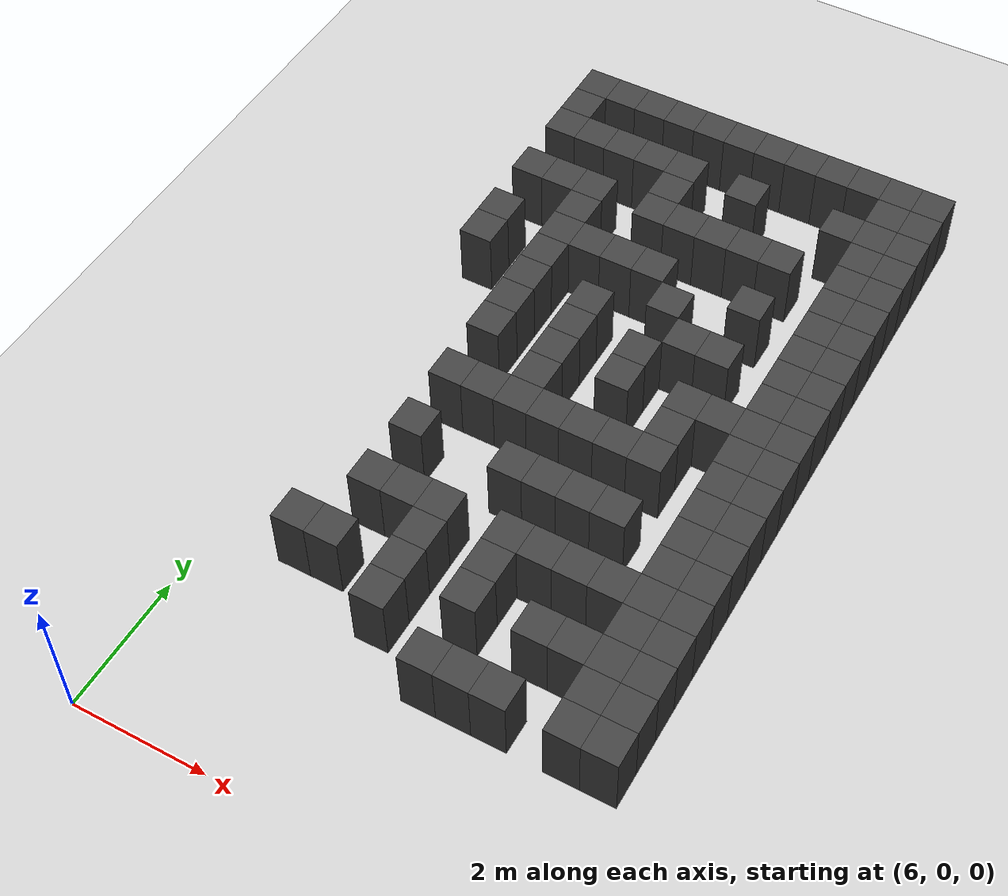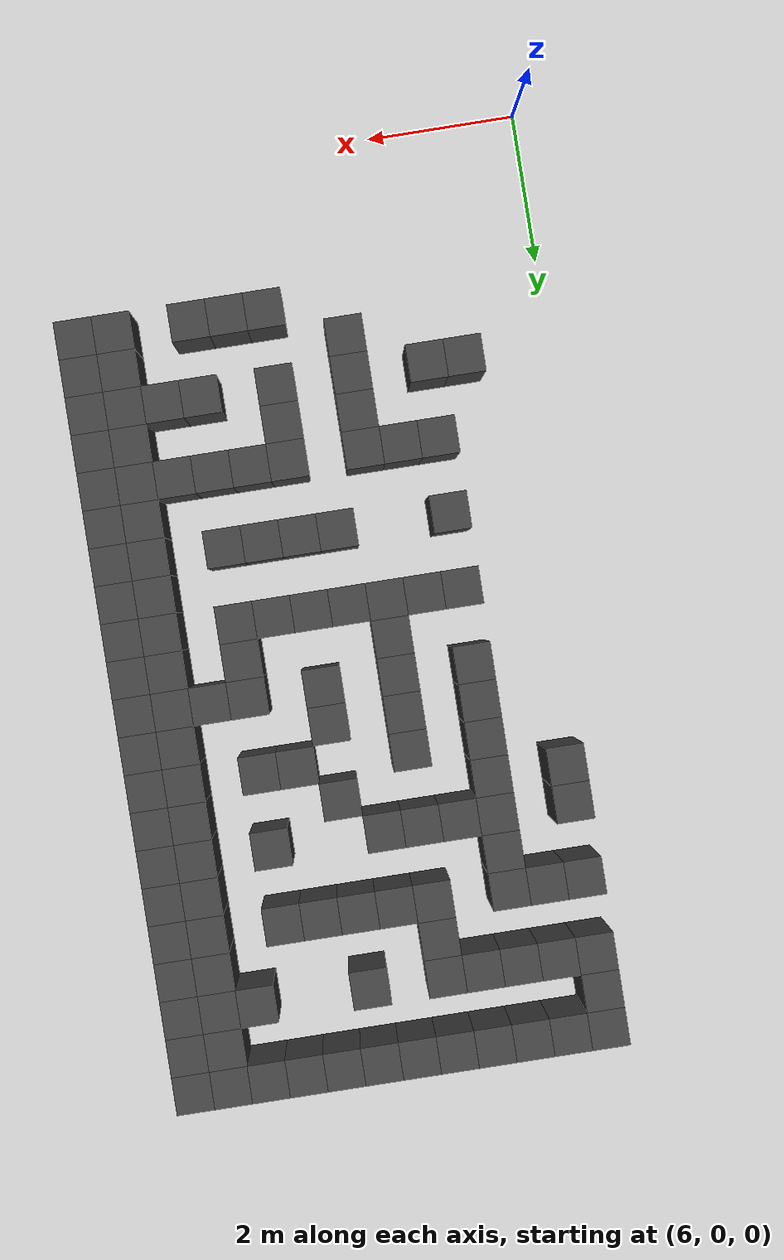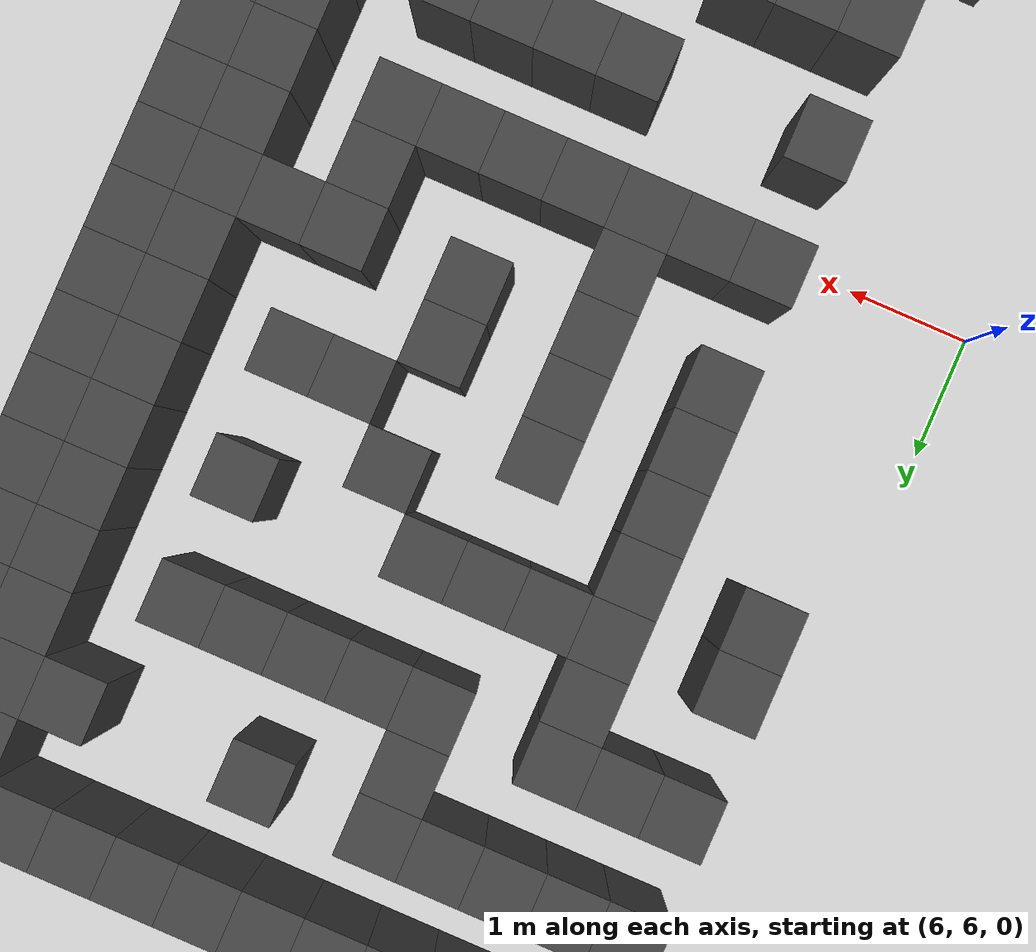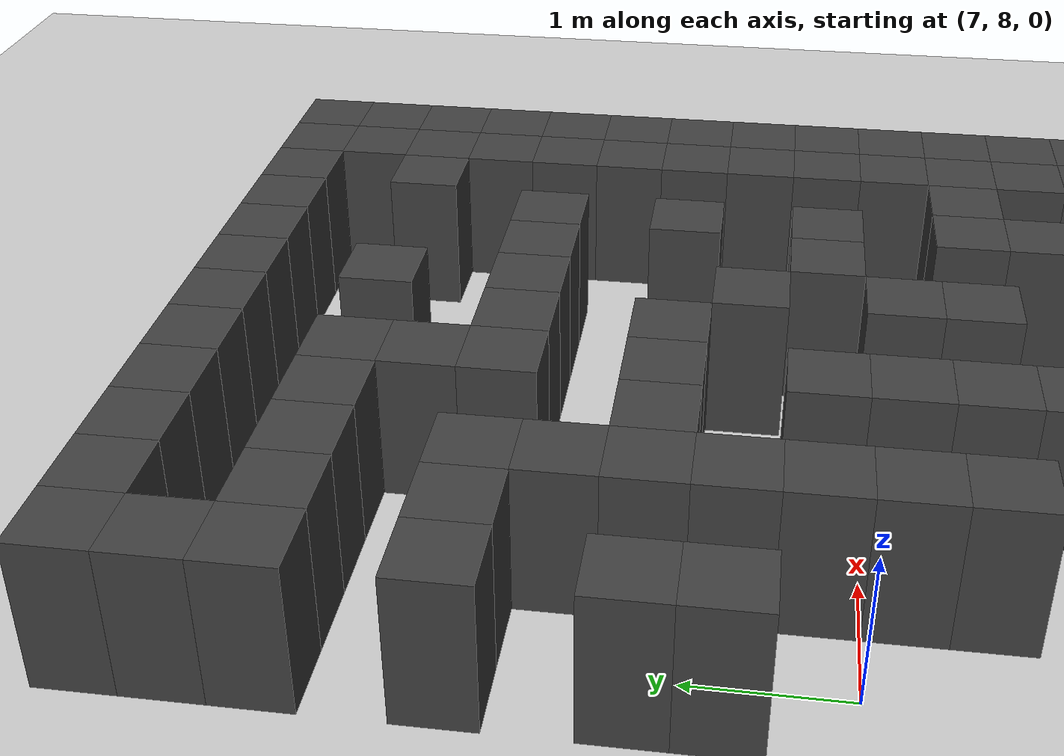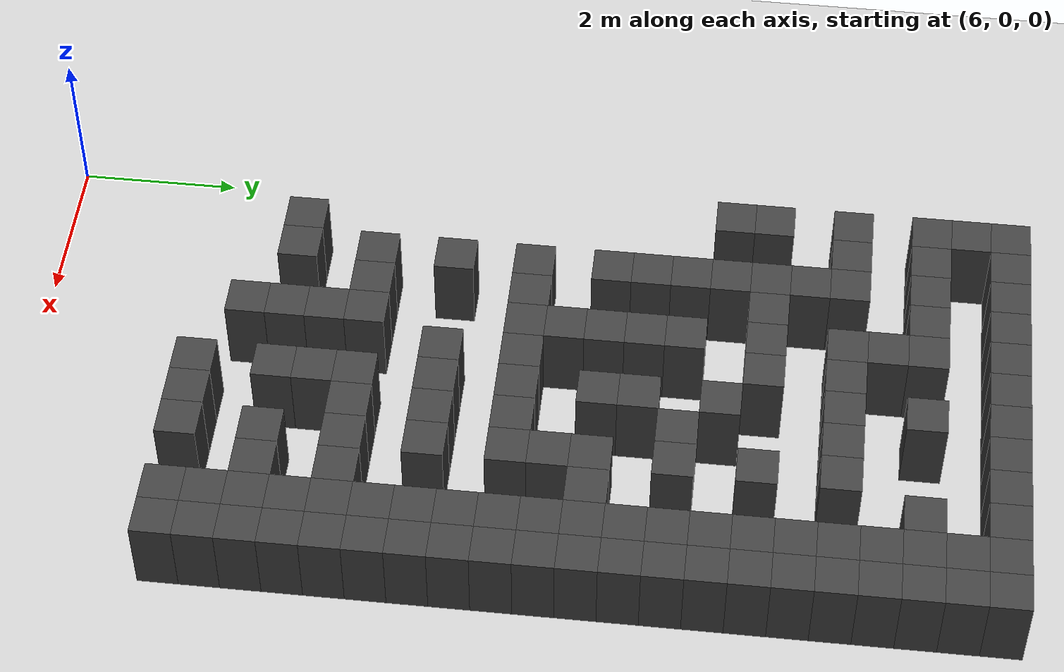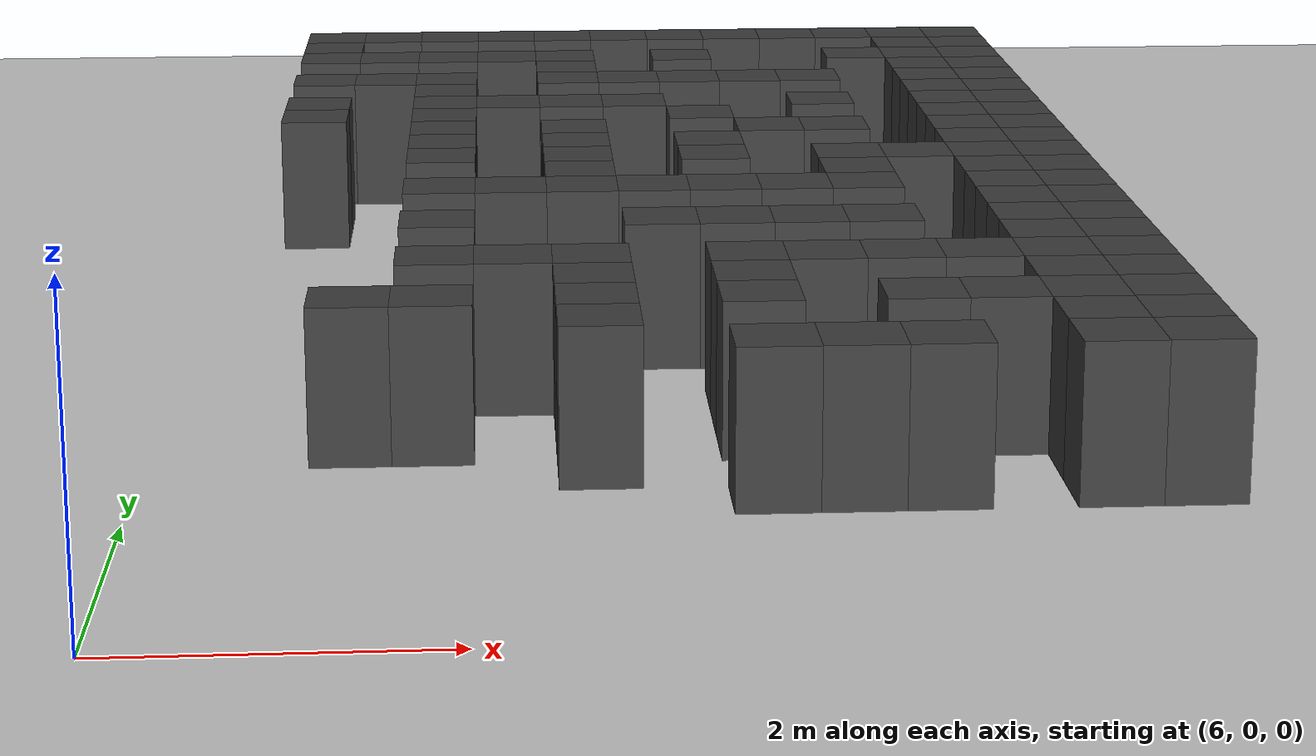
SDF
<sdf version="1.7">
 <world name="map_16588">
  <model name="ground_plane">
   <static>true</static>
   <link name="link">
    <collision name="collision">
     <geometry><plane><normal>0 0 1</normal><size>200 200</size></plane></geometry>
    </collision>
    <visual name="visual">
     <geometry><plane><normal>0 0 1</normal><size>200 200</size></plane></geometry>
     <material><ambient>0.8 0.8 0.8 1</ambient><diffuse>0.8 0.8 0.8 1</diffuse></material>
    </visual>
   </link>
  </model>
  <model name="maze_environment">
   <static>true</static>
   <link name="wall_38">
    <pose>6.750 12.250 0.500 0 0 0</pose>
    <collision name="col"><geometry><box><size>0.5 0.5 1.0</size></box></geometry></collision>
    <visual name="vis">
     <geometry><box><size>0.5 0.5 1.0</size></box></geometry>
     <material><ambient>0.15 0.15 0.15 1</ambient><diffuse>0.25 0.25 0.25 1</diffuse></material>
    </visual>
   </link>
   <link name="wall_39">
    <pose>7.250 12.250 0.500 0 0 0</pose>
    <collision name="col"><geometry><box><size>0.5 0.5 1.0</size></box></geometry></collision>
    <visual name="vis">
     <geometry><box><size>0.5 0.5 1.0</size></box></geometry>
     <material><ambient>0.15 0.15 0.15 1</ambient><diffuse>0.25 0.25 0.25 1</diffuse></material>
    </visual>
   </link>
   <link name="wall_40">
    <pose>7.750 12.250 0.500 0 0 0</pose>
    <collision name="col"><geometry><box><size>0.5 0.5 1.0</size></box></geometry></collision>
    <visual name="vis">
     <geometry><box><size>0.5 0.5 1.0</size></box></geometry>
     <material><ambient>0.15 0.15 0.15 1</ambient><diffuse>0.25 0.25 0.25 1</diffuse></material>
    </visual>
   </link>
   <link name="wall_41">
    <pose>8.250 12.250 0.500 0 0 0</pose>
    <collision name="col"><geometry><box><size>0.5 0.5 1.0</size></box></geometry></collision>
    <visual name="vis">
     <geometry><box><size>0.5 0.5 1.0</size></box></geometry>
     <material><ambient>0.15 0.15 0.15 1</ambient><diffuse>0.25 0.25 0.25 1</diffuse></material>
    </visual>
   </link>
   <link name="wall_42">
    <pose>8.750 12.250 0.500 0 0 0</pose>
    <collision name="col"><geometry><box><size>0.5 0.5 1.0</size></box></geometry></collision>
    <visual name="vis">
     <geometry><box><size>0.5 0.5 1.0</size></box></geometry>
     <material><ambient>0.15 0.15 0.15 1</ambient><diffuse>0.25 0.25 0.25 1</diffuse></material>
    </visual>
   </link>
   <link name="wall_43">
    <pose>9.250 12.250 0.500 0 0 0</pose>
    <collision name="col"><geometry><box><size>0.5 0.5 1.0</size></box></geometry></collision>
    <visual name="vis">
     <geometry><box><size>0.5 0.5 1.0</size></box></geometry>
     <material><ambient>0.15 0.15 0.15 1</ambient><diffuse>0.25 0.25 0.25 1</diffuse></material>
    </visual>
   </link>
   <link name="wall_44">
    <pose>9.750 12.250 0.500 0 0 0</pose>
    <collision name="col"><geometry><box><size>0.5 0.5 1.0</size></box></geometry></collision>
    <visual name="vis">
     <geometry><box><size>0.5 0.5 1.0</size></box></geometry>
     <material><ambient>0.15 0.15 0.15 1</ambient><diffuse>0.25 0.25 0.25 1</diffuse></material>
    </visual>
   </link>
   <link name="wall_45">
    <pose>10.250 12.250 0.500 0 0 0</pose>
    <collision name="col"><geometry><box><size>0.5 0.5 1.0</size></box></geometry></collision>
    <visual name="vis">
     <geometry><box><size>0.5 0.5 1.0</size></box></geometry>
     <material><ambient>0.15 0.15 0.15 1</ambient><diffuse>0.25 0.25 0.25 1</diffuse></material>
    </visual>
   </link>
   <link name="wall_46">
    <pose>10.750 12.250 0.500 0 0 0</pose>
    <collision name="col"><geometry><box><size>0.5 0.5 1.0</size></box></geometry></collision>
    <visual name="vis">
     <geometry><box><size>0.5 0.5 1.0</size></box></geometry>
     <material><ambient>0.15 0.15 0.15 1</ambient><diffuse>0.25 0.25 0.25 1</diffuse></material>
    </visual>
   </link>
   <link name="wall_47">
    <pose>11.250 12.250 0.500 0 0 0</pose>
    <collision name="col"><geometry><box><size>0.5 0.5 1.0</size></box></geometry></collision>
    <visual name="vis">
     <geometry><box><size>0.5 0.5 1.0</size></box></geometry>
     <material><ambient>0.15 0.15 0.15 1</ambient><diffuse>0.25 0.25 0.25 1</diffuse></material>
    </visual>
   </link>
   <link name="wall_48">
    <pose>11.750 12.250 0.500 0 0 0</pose>
    <collision name="col"><geometry><box><size>0.5 0.5 1.0</size></box></geometry></collision>
    <visual name="vis">
     <geometry><box><size>0.5 0.5 1.0</size></box></geometry>
     <material><ambient>0.15 0.15 0.15 1</ambient><diffuse>0.25 0.25 0.25 1</diffuse></material>
    </visual>
   </link>
   <link name="wall_49">
    <pose>12.250 12.250 0.500 0 0 0</pose>
    <collision name="col"><geometry><box><size>0.5 0.5 1.0</size></box></geometry></collision>
    <visual name="vis">
     <geometry><box><size>0.5 0.5 1.0</size></box></geometry>
     <material><ambient>0.15 0.15 0.15 1</ambient><diffuse>0.25 0.25 0.25 1</diffuse></material>
    </visual>
   </link>
   <link name="wall_56">
    <pose>6.750 11.750 0.500 0 0 0</pose>
    <collision name="col"><geometry><box><size>0.5 0.5 1.0</size></box></geometry></collision>
    <visual name="vis">
     <geometry><box><size>0.5 0.5 1.0</size></box></geometry>
     <material><ambient>0.15 0.15 0.15 1</ambient><diffuse>0.25 0.25 0.25 1</diffuse></material>
    </visual>
   </link>
   <link name="wall_57">
    <pose>11.750 11.750 0.500 0 0 0</pose>
    <collision name="col"><geometry><box><size>0.5 0.5 1.0</size></box></geometry></collision>
    <visual name="vis">
     <geometry><box><size>0.5 0.5 1.0</size></box></geometry>
     <material><ambient>0.15 0.15 0.15 1</ambient><diffuse>0.25 0.25 0.25 1</diffuse></material>
    </visual>
   </link>
   <link name="wall_58">
    <pose>12.250 11.750 0.500 0 0 0</pose>
    <collision name="col"><geometry><box><size>0.5 0.5 1.0</size></box></geometry></collision>
    <visual name="vis">
     <geometry><box><size>0.5 0.5 1.0</size></box></geometry>
     <material><ambient>0.15 0.15 0.15 1</ambient><diffuse>0.25 0.25 0.25 1</diffuse></material>
    </visual>
   </link>
   <link name="wall_84">
    <pose>6.750 11.250 0.500 0 0 0</pose>
    <collision name="col"><geometry><box><size>0.5 0.5 1.0</size></box></geometry></collision>
    <visual name="vis">
     <geometry><box><size>0.5 0.5 1.0</size></box></geometry>
     <material><ambient>0.15 0.15 0.15 1</ambient><diffuse>0.25 0.25 0.25 1</diffuse></material>
    </visual>
   </link>
   <link name="wall_85">
    <pose>7.250 11.250 0.500 0 0 0</pose>
    <collision name="col"><geometry><box><size>0.5 0.5 1.0</size></box></geometry></collision>
    <visual name="vis">
     <geometry><box><size>0.5 0.5 1.0</size></box></geometry>
     <material><ambient>0.15 0.15 0.15 1</ambient><diffuse>0.25 0.25 0.25 1</diffuse></material>
    </visual>
   </link>
   <link name="wall_86">
    <pose>7.750 11.250 0.500 0 0 0</pose>
    <collision name="col"><geometry><box><size>0.5 0.5 1.0</size></box></geometry></collision>
    <visual name="vis">
     <geometry><box><size>0.5 0.5 1.0</size></box></geometry>
     <material><ambient>0.15 0.15 0.15 1</ambient><diffuse>0.25 0.25 0.25 1</diffuse></material>
    </visual>
   </link>
   <link name="wall_87">
    <pose>8.250 11.250 0.500 0 0 0</pose>
    <collision name="col"><geometry><box><size>0.5 0.5 1.0</size></box></geometry></collision>
    <visual name="vis">
     <geometry><box><size>0.5 0.5 1.0</size></box></geometry>
     <material><ambient>0.15 0.15 0.15 1</ambient><diffuse>0.25 0.25 0.25 1</diffuse></material>
    </visual>
   </link>
   <link name="wall_88">
    <pose>8.750 11.250 0.500 0 0 0</pose>
    <collision name="col"><geometry><box><size>0.5 0.5 1.0</size></box></geometry></collision>
    <visual name="vis">
     <geometry><box><size>0.5 0.5 1.0</size></box></geometry>
     <material><ambient>0.15 0.15 0.15 1</ambient><diffuse>0.25 0.25 0.25 1</diffuse></material>
    </visual>
   </link>
   <link name="wall_89">
    <pose>9.750 11.250 0.500 0 0 0</pose>
    <collision name="col"><geometry><box><size>0.5 0.5 1.0</size></box></geometry></collision>
    <visual name="vis">
     <geometry><box><size>0.5 0.5 1.0</size></box></geometry>
     <material><ambient>0.15 0.15 0.15 1</ambient><diffuse>0.25 0.25 0.25 1</diffuse></material>
    </visual>
   </link>
   <link name="wall_90">
    <pose>11.250 11.250 0.500 0 0 0</pose>
    <collision name="col"><geometry><box><size>0.5 0.5 1.0</size></box></geometry></collision>
    <visual name="vis">
     <geometry><box><size>0.5 0.5 1.0</size></box></geometry>
     <material><ambient>0.15 0.15 0.15 1</ambient><diffuse>0.25 0.25 0.25 1</diffuse></material>
    </visual>
   </link>
   <link name="wall_91">
    <pose>11.750 11.250 0.500 0 0 0</pose>
    <collision name="col"><geometry><box><size>0.5 0.5 1.0</size></box></geometry></collision>
    <visual name="vis">
     <geometry><box><size>0.5 0.5 1.0</size></box></geometry>
     <material><ambient>0.15 0.15 0.15 1</ambient><diffuse>0.25 0.25 0.25 1</diffuse></material>
    </visual>
   </link>
   <link name="wall_92">
    <pose>12.250 11.250 0.500 0 0 0</pose>
    <collision name="col"><geometry><box><size>0.5 0.5 1.0</size></box></geometry></collision>
    <visual name="vis">
     <geometry><box><size>0.5 0.5 1.0</size></box></geometry>
     <material><ambient>0.15 0.15 0.15 1</ambient><diffuse>0.25 0.25 0.25 1</diffuse></material>
    </visual>
   </link>
   <link name="wall_105">
    <pose>8.750 10.750 0.500 0 0 0</pose>
    <collision name="col"><geometry><box><size>0.5 0.5 1.0</size></box></geometry></collision>
    <visual name="vis">
     <geometry><box><size>0.5 0.5 1.0</size></box></geometry>
     <material><ambient>0.15 0.15 0.15 1</ambient><diffuse>0.25 0.25 0.25 1</diffuse></material>
    </visual>
   </link>
   <link name="wall_106">
    <pose>11.750 10.750 0.500 0 0 0</pose>
    <collision name="col"><geometry><box><size>0.5 0.5 1.0</size></box></geometry></collision>
    <visual name="vis">
     <geometry><box><size>0.5 0.5 1.0</size></box></geometry>
     <material><ambient>0.15 0.15 0.15 1</ambient><diffuse>0.25 0.25 0.25 1</diffuse></material>
    </visual>
   </link>
   <link name="wall_107">
    <pose>12.250 10.750 0.500 0 0 0</pose>
    <collision name="col"><geometry><box><size>0.5 0.5 1.0</size></box></geometry></collision>
    <visual name="vis">
     <geometry><box><size>0.5 0.5 1.0</size></box></geometry>
     <material><ambient>0.15 0.15 0.15 1</ambient><diffuse>0.25 0.25 0.25 1</diffuse></material>
    </visual>
   </link>
   <link name="wall_131">
    <pose>6.750 10.250 0.500 0 0 0</pose>
    <collision name="col"><geometry><box><size>0.5 0.5 1.0</size></box></geometry></collision>
    <visual name="vis">
     <geometry><box><size>0.5 0.5 1.0</size></box></geometry>
     <material><ambient>0.15 0.15 0.15 1</ambient><diffuse>0.25 0.25 0.25 1</diffuse></material>
    </visual>
   </link>
   <link name="wall_132">
    <pose>7.250 10.250 0.500 0 0 0</pose>
    <collision name="col"><geometry><box><size>0.5 0.5 1.0</size></box></geometry></collision>
    <visual name="vis">
     <geometry><box><size>0.5 0.5 1.0</size></box></geometry>
     <material><ambient>0.15 0.15 0.15 1</ambient><diffuse>0.25 0.25 0.25 1</diffuse></material>
    </visual>
   </link>
   <link name="wall_133">
    <pose>7.750 10.250 0.500 0 0 0</pose>
    <collision name="col"><geometry><box><size>0.5 0.5 1.0</size></box></geometry></collision>
    <visual name="vis">
     <geometry><box><size>0.5 0.5 1.0</size></box></geometry>
     <material><ambient>0.15 0.15 0.15 1</ambient><diffuse>0.25 0.25 0.25 1</diffuse></material>
    </visual>
   </link>
   <link name="wall_134">
    <pose>8.750 10.250 0.500 0 0 0</pose>
    <collision name="col"><geometry><box><size>0.5 0.5 1.0</size></box></geometry></collision>
    <visual name="vis">
     <geometry><box><size>0.5 0.5 1.0</size></box></geometry>
     <material><ambient>0.15 0.15 0.15 1</ambient><diffuse>0.25 0.25 0.25 1</diffuse></material>
    </visual>
   </link>
   <link name="wall_135">
    <pose>9.250 10.250 0.500 0 0 0</pose>
    <collision name="col"><geometry><box><size>0.5 0.5 1.0</size></box></geometry></collision>
    <visual name="vis">
     <geometry><box><size>0.5 0.5 1.0</size></box></geometry>
     <material><ambient>0.15 0.15 0.15 1</ambient><diffuse>0.25 0.25 0.25 1</diffuse></material>
    </visual>
   </link>
   <link name="wall_136">
    <pose>9.750 10.250 0.500 0 0 0</pose>
    <collision name="col"><geometry><box><size>0.5 0.5 1.0</size></box></geometry></collision>
    <visual name="vis">
     <geometry><box><size>0.5 0.5 1.0</size></box></geometry>
     <material><ambient>0.15 0.15 0.15 1</ambient><diffuse>0.25 0.25 0.25 1</diffuse></material>
    </visual>
   </link>
   <link name="wall_137">
    <pose>10.250 10.250 0.500 0 0 0</pose>
    <collision name="col"><geometry><box><size>0.5 0.5 1.0</size></box></geometry></collision>
    <visual name="vis">
     <geometry><box><size>0.5 0.5 1.0</size></box></geometry>
     <material><ambient>0.15 0.15 0.15 1</ambient><diffuse>0.25 0.25 0.25 1</diffuse></material>
    </visual>
   </link>
   <link name="wall_138">
    <pose>10.750 10.250 0.500 0 0 0</pose>
    <collision name="col"><geometry><box><size>0.5 0.5 1.0</size></box></geometry></collision>
    <visual name="vis">
     <geometry><box><size>0.5 0.5 1.0</size></box></geometry>
     <material><ambient>0.15 0.15 0.15 1</ambient><diffuse>0.25 0.25 0.25 1</diffuse></material>
    </visual>
   </link>
   <link name="wall_139">
    <pose>11.750 10.250 0.500 0 0 0</pose>
    <collision name="col"><geometry><box><size>0.5 0.5 1.0</size></box></geometry></collision>
    <visual name="vis">
     <geometry><box><size>0.5 0.5 1.0</size></box></geometry>
     <material><ambient>0.15 0.15 0.15 1</ambient><diffuse>0.25 0.25 0.25 1</diffuse></material>
    </visual>
   </link>
   <link name="wall_140">
    <pose>12.250 10.250 0.500 0 0 0</pose>
    <collision name="col"><geometry><box><size>0.5 0.5 1.0</size></box></geometry></collision>
    <visual name="vis">
     <geometry><box><size>0.5 0.5 1.0</size></box></geometry>
     <material><ambient>0.15 0.15 0.15 1</ambient><diffuse>0.25 0.25 0.25 1</diffuse></material>
    </visual>
   </link>
   <link name="wall_152">
    <pose>7.750 9.750 0.500 0 0 0</pose>
    <collision name="col"><geometry><box><size>0.5 0.5 1.0</size></box></geometry></collision>
    <visual name="vis">
     <geometry><box><size>0.5 0.5 1.0</size></box></geometry>
     <material><ambient>0.15 0.15 0.15 1</ambient><diffuse>0.25 0.25 0.25 1</diffuse></material>
    </visual>
   </link>
   <link name="wall_153">
    <pose>11.750 9.750 0.500 0 0 0</pose>
    <collision name="col"><geometry><box><size>0.5 0.5 1.0</size></box></geometry></collision>
    <visual name="vis">
     <geometry><box><size>0.5 0.5 1.0</size></box></geometry>
     <material><ambient>0.15 0.15 0.15 1</ambient><diffuse>0.25 0.25 0.25 1</diffuse></material>
    </visual>
   </link>
   <link name="wall_154">
    <pose>12.250 9.750 0.500 0 0 0</pose>
    <collision name="col"><geometry><box><size>0.5 0.5 1.0</size></box></geometry></collision>
    <visual name="vis">
     <geometry><box><size>0.5 0.5 1.0</size></box></geometry>
     <material><ambient>0.15 0.15 0.15 1</ambient><diffuse>0.25 0.25 0.25 1</diffuse></material>
    </visual>
   </link>
   <link name="wall_181">
    <pose>6.750 9.250 0.500 0 0 0</pose>
    <collision name="col"><geometry><box><size>0.5 0.5 1.0</size></box></geometry></collision>
    <visual name="vis">
     <geometry><box><size>0.5 0.5 1.0</size></box></geometry>
     <material><ambient>0.15 0.15 0.15 1</ambient><diffuse>0.25 0.25 0.25 1</diffuse></material>
    </visual>
   </link>
   <link name="wall_182">
    <pose>7.750 9.250 0.500 0 0 0</pose>
    <collision name="col"><geometry><box><size>0.5 0.5 1.0</size></box></geometry></collision>
    <visual name="vis">
     <geometry><box><size>0.5 0.5 1.0</size></box></geometry>
     <material><ambient>0.15 0.15 0.15 1</ambient><diffuse>0.25 0.25 0.25 1</diffuse></material>
    </visual>
   </link>
   <link name="wall_183">
    <pose>8.250 9.250 0.500 0 0 0</pose>
    <collision name="col"><geometry><box><size>0.5 0.5 1.0</size></box></geometry></collision>
    <visual name="vis">
     <geometry><box><size>0.5 0.5 1.0</size></box></geometry>
     <material><ambient>0.15 0.15 0.15 1</ambient><diffuse>0.25 0.25 0.25 1</diffuse></material>
    </visual>
   </link>
   <link name="wall_184">
    <pose>8.750 9.250 0.500 0 0 0</pose>
    <collision name="col"><geometry><box><size>0.5 0.5 1.0</size></box></geometry></collision>
    <visual name="vis">
     <geometry><box><size>0.5 0.5 1.0</size></box></geometry>
     <material><ambient>0.15 0.15 0.15 1</ambient><diffuse>0.25 0.25 0.25 1</diffuse></material>
    </visual>
   </link>
   <link name="wall_185">
    <pose>9.250 9.250 0.500 0 0 0</pose>
    <collision name="col"><geometry><box><size>0.5 0.5 1.0</size></box></geometry></collision>
    <visual name="vis">
     <geometry><box><size>0.5 0.5 1.0</size></box></geometry>
     <material><ambient>0.15 0.15 0.15 1</ambient><diffuse>0.25 0.25 0.25 1</diffuse></material>
    </visual>
   </link>
   <link name="wall_186">
    <pose>10.750 9.250 0.500 0 0 0</pose>
    <collision name="col"><geometry><box><size>0.5 0.5 1.0</size></box></geometry></collision>
    <visual name="vis">
     <geometry><box><size>0.5 0.5 1.0</size></box></geometry>
     <material><ambient>0.15 0.15 0.15 1</ambient><diffuse>0.25 0.25 0.25 1</diffuse></material>
    </visual>
   </link>
   <link name="wall_187">
    <pose>11.750 9.250 0.500 0 0 0</pose>
    <collision name="col"><geometry><box><size>0.5 0.5 1.0</size></box></geometry></collision>
    <visual name="vis">
     <geometry><box><size>0.5 0.5 1.0</size></box></geometry>
     <material><ambient>0.15 0.15 0.15 1</ambient><diffuse>0.25 0.25 0.25 1</diffuse></material>
    </visual>
   </link>
   <link name="wall_188">
    <pose>12.250 9.250 0.500 0 0 0</pose>
    <collision name="col"><geometry><box><size>0.5 0.5 1.0</size></box></geometry></collision>
    <visual name="vis">
     <geometry><box><size>0.5 0.5 1.0</size></box></geometry>
     <material><ambient>0.15 0.15 0.15 1</ambient><diffuse>0.25 0.25 0.25 1</diffuse></material>
    </visual>
   </link>
   <link name="wall_198">
    <pose>6.750 8.750 0.500 0 0 0</pose>
    <collision name="col"><geometry><box><size>0.5 0.5 1.0</size></box></geometry></collision>
    <visual name="vis">
     <geometry><box><size>0.5 0.5 1.0</size></box></geometry>
     <material><ambient>0.15 0.15 0.15 1</ambient><diffuse>0.25 0.25 0.25 1</diffuse></material>
    </visual>
   </link>
   <link name="wall_199">
    <pose>7.750 8.750 0.500 0 0 0</pose>
    <collision name="col"><geometry><box><size>0.5 0.5 1.0</size></box></geometry></collision>
    <visual name="vis">
     <geometry><box><size>0.5 0.5 1.0</size></box></geometry>
     <material><ambient>0.15 0.15 0.15 1</ambient><diffuse>0.25 0.25 0.25 1</diffuse></material>
    </visual>
   </link>
   <link name="wall_200">
    <pose>9.750 8.750 0.500 0 0 0</pose>
    <collision name="col"><geometry><box><size>0.5 0.5 1.0</size></box></geometry></collision>
    <visual name="vis">
     <geometry><box><size>0.5 0.5 1.0</size></box></geometry>
     <material><ambient>0.15 0.15 0.15 1</ambient><diffuse>0.25 0.25 0.25 1</diffuse></material>
    </visual>
   </link>
   <link name="wall_201">
    <pose>11.750 8.750 0.500 0 0 0</pose>
    <collision name="col"><geometry><box><size>0.5 0.5 1.0</size></box></geometry></collision>
    <visual name="vis">
     <geometry><box><size>0.5 0.5 1.0</size></box></geometry>
     <material><ambient>0.15 0.15 0.15 1</ambient><diffuse>0.25 0.25 0.25 1</diffuse></material>
    </visual>
   </link>
   <link name="wall_202">
    <pose>12.250 8.750 0.500 0 0 0</pose>
    <collision name="col"><geometry><box><size>0.5 0.5 1.0</size></box></geometry></collision>
    <visual name="vis">
     <geometry><box><size>0.5 0.5 1.0</size></box></geometry>
     <material><ambient>0.15 0.15 0.15 1</ambient><diffuse>0.25 0.25 0.25 1</diffuse></material>
    </visual>
   </link>
   <link name="wall_227">
    <pose>7.750 8.250 0.500 0 0 0</pose>
    <collision name="col"><geometry><box><size>0.5 0.5 1.0</size></box></geometry></collision>
    <visual name="vis">
     <geometry><box><size>0.5 0.5 1.0</size></box></geometry>
     <material><ambient>0.15 0.15 0.15 1</ambient><diffuse>0.25 0.25 0.25 1</diffuse></material>
    </visual>
   </link>
   <link name="wall_228">
    <pose>8.750 8.250 0.500 0 0 0</pose>
    <collision name="col"><geometry><box><size>0.5 0.5 1.0</size></box></geometry></collision>
    <visual name="vis">
     <geometry><box><size>0.5 0.5 1.0</size></box></geometry>
     <material><ambient>0.15 0.15 0.15 1</ambient><diffuse>0.25 0.25 0.25 1</diffuse></material>
    </visual>
   </link>
   <link name="wall_229">
    <pose>10.250 8.250 0.500 0 0 0</pose>
    <collision name="col"><geometry><box><size>0.5 0.5 1.0</size></box></geometry></collision>
    <visual name="vis">
     <geometry><box><size>0.5 0.5 1.0</size></box></geometry>
     <material><ambient>0.15 0.15 0.15 1</ambient><diffuse>0.25 0.25 0.25 1</diffuse></material>
    </visual>
   </link>
   <link name="wall_230">
    <pose>10.750 8.250 0.500 0 0 0</pose>
    <collision name="col"><geometry><box><size>0.5 0.5 1.0</size></box></geometry></collision>
    <visual name="vis">
     <geometry><box><size>0.5 0.5 1.0</size></box></geometry>
     <material><ambient>0.15 0.15 0.15 1</ambient><diffuse>0.25 0.25 0.25 1</diffuse></material>
    </visual>
   </link>
   <link name="wall_231">
    <pose>11.750 8.250 0.500 0 0 0</pose>
    <collision name="col"><geometry><box><size>0.5 0.5 1.0</size></box></geometry></collision>
    <visual name="vis">
     <geometry><box><size>0.5 0.5 1.0</size></box></geometry>
     <material><ambient>0.15 0.15 0.15 1</ambient><diffuse>0.25 0.25 0.25 1</diffuse></material>
    </visual>
   </link>
   <link name="wall_232">
    <pose>12.250 8.250 0.500 0 0 0</pose>
    <collision name="col"><geometry><box><size>0.5 0.5 1.0</size></box></geometry></collision>
    <visual name="vis">
     <geometry><box><size>0.5 0.5 1.0</size></box></geometry>
     <material><ambient>0.15 0.15 0.15 1</ambient><diffuse>0.25 0.25 0.25 1</diffuse></material>
    </visual>
   </link>
   <link name="wall_245">
    <pose>7.750 7.750 0.500 0 0 0</pose>
    <collision name="col"><geometry><box><size>0.5 0.5 1.0</size></box></geometry></collision>
    <visual name="vis">
     <geometry><box><size>0.5 0.5 1.0</size></box></geometry>
     <material><ambient>0.15 0.15 0.15 1</ambient><diffuse>0.25 0.25 0.25 1</diffuse></material>
    </visual>
   </link>
   <link name="wall_246">
    <pose>8.750 7.750 0.500 0 0 0</pose>
    <collision name="col"><geometry><box><size>0.5 0.5 1.0</size></box></geometry></collision>
    <visual name="vis">
     <geometry><box><size>0.5 0.5 1.0</size></box></geometry>
     <material><ambient>0.15 0.15 0.15 1</ambient><diffuse>0.25 0.25 0.25 1</diffuse></material>
    </visual>
   </link>
   <link name="wall_247">
    <pose>9.750 7.750 0.500 0 0 0</pose>
    <collision name="col"><geometry><box><size>0.5 0.5 1.0</size></box></geometry></collision>
    <visual name="vis">
     <geometry><box><size>0.5 0.5 1.0</size></box></geometry>
     <material><ambient>0.15 0.15 0.15 1</ambient><diffuse>0.25 0.25 0.25 1</diffuse></material>
    </visual>
   </link>
   <link name="wall_248">
    <pose>11.750 7.750 0.500 0 0 0</pose>
    <collision name="col"><geometry><box><size>0.5 0.5 1.0</size></box></geometry></collision>
    <visual name="vis">
     <geometry><box><size>0.5 0.5 1.0</size></box></geometry>
     <material><ambient>0.15 0.15 0.15 1</ambient><diffuse>0.25 0.25 0.25 1</diffuse></material>
    </visual>
   </link>
   <link name="wall_249">
    <pose>12.250 7.750 0.500 0 0 0</pose>
    <collision name="col"><geometry><box><size>0.5 0.5 1.0</size></box></geometry></collision>
    <visual name="vis">
     <geometry><box><size>0.5 0.5 1.0</size></box></geometry>
     <material><ambient>0.15 0.15 0.15 1</ambient><diffuse>0.25 0.25 0.25 1</diffuse></material>
    </visual>
   </link>
   <link name="wall_275">
    <pose>7.750 7.250 0.500 0 0 0</pose>
    <collision name="col"><geometry><box><size>0.5 0.5 1.0</size></box></geometry></collision>
    <visual name="vis">
     <geometry><box><size>0.5 0.5 1.0</size></box></geometry>
     <material><ambient>0.15 0.15 0.15 1</ambient><diffuse>0.25 0.25 0.25 1</diffuse></material>
    </visual>
   </link>
   <link name="wall_276">
    <pose>8.750 7.250 0.500 0 0 0</pose>
    <collision name="col"><geometry><box><size>0.5 0.5 1.0</size></box></geometry></collision>
    <visual name="vis">
     <geometry><box><size>0.5 0.5 1.0</size></box></geometry>
     <material><ambient>0.15 0.15 0.15 1</ambient><diffuse>0.25 0.25 0.25 1</diffuse></material>
    </visual>
   </link>
   <link name="wall_277">
    <pose>9.750 7.250 0.500 0 0 0</pose>
    <collision name="col"><geometry><box><size>0.5 0.5 1.0</size></box></geometry></collision>
    <visual name="vis">
     <geometry><box><size>0.5 0.5 1.0</size></box></geometry>
     <material><ambient>0.15 0.15 0.15 1</ambient><diffuse>0.25 0.25 0.25 1</diffuse></material>
    </visual>
   </link>
   <link name="wall_278">
    <pose>10.750 7.250 0.500 0 0 0</pose>
    <collision name="col"><geometry><box><size>0.5 0.5 1.0</size></box></geometry></collision>
    <visual name="vis">
     <geometry><box><size>0.5 0.5 1.0</size></box></geometry>
     <material><ambient>0.15 0.15 0.15 1</ambient><diffuse>0.25 0.25 0.25 1</diffuse></material>
    </visual>
   </link>
   <link name="wall_279">
    <pose>11.250 7.250 0.500 0 0 0</pose>
    <collision name="col"><geometry><box><size>0.5 0.5 1.0</size></box></geometry></collision>
    <visual name="vis">
     <geometry><box><size>0.5 0.5 1.0</size></box></geometry>
     <material><ambient>0.15 0.15 0.15 1</ambient><diffuse>0.25 0.25 0.25 1</diffuse></material>
    </visual>
   </link>
   <link name="wall_280">
    <pose>11.750 7.250 0.500 0 0 0</pose>
    <collision name="col"><geometry><box><size>0.5 0.5 1.0</size></box></geometry></collision>
    <visual name="vis">
     <geometry><box><size>0.5 0.5 1.0</size></box></geometry>
     <material><ambient>0.15 0.15 0.15 1</ambient><diffuse>0.25 0.25 0.25 1</diffuse></material>
    </visual>
   </link>
   <link name="wall_281">
    <pose>12.250 7.250 0.500 0 0 0</pose>
    <collision name="col"><geometry><box><size>0.5 0.5 1.0</size></box></geometry></collision>
    <visual name="vis">
     <geometry><box><size>0.5 0.5 1.0</size></box></geometry>
     <material><ambient>0.15 0.15 0.15 1</ambient><diffuse>0.25 0.25 0.25 1</diffuse></material>
    </visual>
   </link>
   <link name="wall_292">
    <pose>8.750 6.750 0.500 0 0 0</pose>
    <collision name="col"><geometry><box><size>0.5 0.5 1.0</size></box></geometry></collision>
    <visual name="vis">
     <geometry><box><size>0.5 0.5 1.0</size></box></geometry>
     <material><ambient>0.15 0.15 0.15 1</ambient><diffuse>0.25 0.25 0.25 1</diffuse></material>
    </visual>
   </link>
   <link name="wall_293">
    <pose>10.750 6.750 0.500 0 0 0</pose>
    <collision name="col"><geometry><box><size>0.5 0.5 1.0</size></box></geometry></collision>
    <visual name="vis">
     <geometry><box><size>0.5 0.5 1.0</size></box></geometry>
     <material><ambient>0.15 0.15 0.15 1</ambient><diffuse>0.25 0.25 0.25 1</diffuse></material>
    </visual>
   </link>
   <link name="wall_294">
    <pose>11.750 6.750 0.500 0 0 0</pose>
    <collision name="col"><geometry><box><size>0.5 0.5 1.0</size></box></geometry></collision>
    <visual name="vis">
     <geometry><box><size>0.5 0.5 1.0</size></box></geometry>
     <material><ambient>0.15 0.15 0.15 1</ambient><diffuse>0.25 0.25 0.25 1</diffuse></material>
    </visual>
   </link>
   <link name="wall_295">
    <pose>12.250 6.750 0.500 0 0 0</pose>
    <collision name="col"><geometry><box><size>0.5 0.5 1.0</size></box></geometry></collision>
    <visual name="vis">
     <geometry><box><size>0.5 0.5 1.0</size></box></geometry>
     <material><ambient>0.15 0.15 0.15 1</ambient><diffuse>0.25 0.25 0.25 1</diffuse></material>
    </visual>
   </link>
   <link name="wall_322">
    <pose>7.750 6.250 0.500 0 0 0</pose>
    <collision name="col"><geometry><box><size>0.5 0.5 1.0</size></box></geometry></collision>
    <visual name="vis">
     <geometry><box><size>0.5 0.5 1.0</size></box></geometry>
     <material><ambient>0.15 0.15 0.15 1</ambient><diffuse>0.25 0.25 0.25 1</diffuse></material>
    </visual>
   </link>
   <link name="wall_323">
    <pose>8.250 6.250 0.500 0 0 0</pose>
    <collision name="col"><geometry><box><size>0.5 0.5 1.0</size></box></geometry></collision>
    <visual name="vis">
     <geometry><box><size>0.5 0.5 1.0</size></box></geometry>
     <material><ambient>0.15 0.15 0.15 1</ambient><diffuse>0.25 0.25 0.25 1</diffuse></material>
    </visual>
   </link>
   <link name="wall_324">
    <pose>8.750 6.250 0.500 0 0 0</pose>
    <collision name="col"><geometry><box><size>0.5 0.5 1.0</size></box></geometry></collision>
    <visual name="vis">
     <geometry><box><size>0.5 0.5 1.0</size></box></geometry>
     <material><ambient>0.15 0.15 0.15 1</ambient><diffuse>0.25 0.25 0.25 1</diffuse></material>
    </visual>
   </link>
   <link name="wall_325">
    <pose>9.250 6.250 0.500 0 0 0</pose>
    <collision name="col"><geometry><box><size>0.5 0.5 1.0</size></box></geometry></collision>
    <visual name="vis">
     <geometry><box><size>0.5 0.5 1.0</size></box></geometry>
     <material><ambient>0.15 0.15 0.15 1</ambient><diffuse>0.25 0.25 0.25 1</diffuse></material>
    </visual>
   </link>
   <link name="wall_326">
    <pose>9.750 6.250 0.500 0 0 0</pose>
    <collision name="col"><geometry><box><size>0.5 0.5 1.0</size></box></geometry></collision>
    <visual name="vis">
     <geometry><box><size>0.5 0.5 1.0</size></box></geometry>
     <material><ambient>0.15 0.15 0.15 1</ambient><diffuse>0.25 0.25 0.25 1</diffuse></material>
    </visual>
   </link>
   <link name="wall_327">
    <pose>10.250 6.250 0.500 0 0 0</pose>
    <collision name="col"><geometry><box><size>0.5 0.5 1.0</size></box></geometry></collision>
    <visual name="vis">
     <geometry><box><size>0.5 0.5 1.0</size></box></geometry>
     <material><ambient>0.15 0.15 0.15 1</ambient><diffuse>0.25 0.25 0.25 1</diffuse></material>
    </visual>
   </link>
   <link name="wall_328">
    <pose>10.750 6.250 0.500 0 0 0</pose>
    <collision name="col"><geometry><box><size>0.5 0.5 1.0</size></box></geometry></collision>
    <visual name="vis">
     <geometry><box><size>0.5 0.5 1.0</size></box></geometry>
     <material><ambient>0.15 0.15 0.15 1</ambient><diffuse>0.25 0.25 0.25 1</diffuse></material>
    </visual>
   </link>
   <link name="wall_329">
    <pose>11.750 6.250 0.500 0 0 0</pose>
    <collision name="col"><geometry><box><size>0.5 0.5 1.0</size></box></geometry></collision>
    <visual name="vis">
     <geometry><box><size>0.5 0.5 1.0</size></box></geometry>
     <material><ambient>0.15 0.15 0.15 1</ambient><diffuse>0.25 0.25 0.25 1</diffuse></material>
    </visual>
   </link>
   <link name="wall_330">
    <pose>12.250 6.250 0.500 0 0 0</pose>
    <collision name="col"><geometry><box><size>0.5 0.5 1.0</size></box></geometry></collision>
    <visual name="vis">
     <geometry><box><size>0.5 0.5 1.0</size></box></geometry>
     <material><ambient>0.15 0.15 0.15 1</ambient><diffuse>0.25 0.25 0.25 1</diffuse></material>
    </visual>
   </link>
   <link name="wall_343">
    <pose>11.750 5.750 0.500 0 0 0</pose>
    <collision name="col"><geometry><box><size>0.5 0.5 1.0</size></box></geometry></collision>
    <visual name="vis">
     <geometry><box><size>0.5 0.5 1.0</size></box></geometry>
     <material><ambient>0.15 0.15 0.15 1</ambient><diffuse>0.25 0.25 0.25 1</diffuse></material>
    </visual>
   </link>
   <link name="wall_344">
    <pose>12.250 5.750 0.500 0 0 0</pose>
    <collision name="col"><geometry><box><size>0.5 0.5 1.0</size></box></geometry></collision>
    <visual name="vis">
     <geometry><box><size>0.5 0.5 1.0</size></box></geometry>
     <material><ambient>0.15 0.15 0.15 1</ambient><diffuse>0.25 0.25 0.25 1</diffuse></material>
    </visual>
   </link>
   <link name="wall_366">
    <pose>7.750 5.250 0.500 0 0 0</pose>
    <collision name="col"><geometry><box><size>0.5 0.5 1.0</size></box></geometry></collision>
    <visual name="vis">
     <geometry><box><size>0.5 0.5 1.0</size></box></geometry>
     <material><ambient>0.15 0.15 0.15 1</ambient><diffuse>0.25 0.25 0.25 1</diffuse></material>
    </visual>
   </link>
   <link name="wall_367">
    <pose>9.250 5.250 0.500 0 0 0</pose>
    <collision name="col"><geometry><box><size>0.5 0.5 1.0</size></box></geometry></collision>
    <visual name="vis">
     <geometry><box><size>0.5 0.5 1.0</size></box></geometry>
     <material><ambient>0.15 0.15 0.15 1</ambient><diffuse>0.25 0.25 0.25 1</diffuse></material>
    </visual>
   </link>
   <link name="wall_368">
    <pose>9.750 5.250 0.500 0 0 0</pose>
    <collision name="col"><geometry><box><size>0.5 0.5 1.0</size></box></geometry></collision>
    <visual name="vis">
     <geometry><box><size>0.5 0.5 1.0</size></box></geometry>
     <material><ambient>0.15 0.15 0.15 1</ambient><diffuse>0.25 0.25 0.25 1</diffuse></material>
    </visual>
   </link>
   <link name="wall_369">
    <pose>10.250 5.250 0.500 0 0 0</pose>
    <collision name="col"><geometry><box><size>0.5 0.5 1.0</size></box></geometry></collision>
    <visual name="vis">
     <geometry><box><size>0.5 0.5 1.0</size></box></geometry>
     <material><ambient>0.15 0.15 0.15 1</ambient><diffuse>0.25 0.25 0.25 1</diffuse></material>
    </visual>
   </link>
   <link name="wall_370">
    <pose>10.750 5.250 0.500 0 0 0</pose>
    <collision name="col"><geometry><box><size>0.5 0.5 1.0</size></box></geometry></collision>
    <visual name="vis">
     <geometry><box><size>0.5 0.5 1.0</size></box></geometry>
     <material><ambient>0.15 0.15 0.15 1</ambient><diffuse>0.25 0.25 0.25 1</diffuse></material>
    </visual>
   </link>
   <link name="wall_371">
    <pose>11.750 5.250 0.500 0 0 0</pose>
    <collision name="col"><geometry><box><size>0.5 0.5 1.0</size></box></geometry></collision>
    <visual name="vis">
     <geometry><box><size>0.5 0.5 1.0</size></box></geometry>
     <material><ambient>0.15 0.15 0.15 1</ambient><diffuse>0.25 0.25 0.25 1</diffuse></material>
    </visual>
   </link>
   <link name="wall_372">
    <pose>12.250 5.250 0.500 0 0 0</pose>
    <collision name="col"><geometry><box><size>0.5 0.5 1.0</size></box></geometry></collision>
    <visual name="vis">
     <geometry><box><size>0.5 0.5 1.0</size></box></geometry>
     <material><ambient>0.15 0.15 0.15 1</ambient><diffuse>0.25 0.25 0.25 1</diffuse></material>
    </visual>
   </link>
   <link name="wall_386">
    <pose>11.750 4.750 0.500 0 0 0</pose>
    <collision name="col"><geometry><box><size>0.5 0.5 1.0</size></box></geometry></collision>
    <visual name="vis">
     <geometry><box><size>0.5 0.5 1.0</size></box></geometry>
     <material><ambient>0.15 0.15 0.15 1</ambient><diffuse>0.25 0.25 0.25 1</diffuse></material>
    </visual>
   </link>
   <link name="wall_387">
    <pose>12.250 4.750 0.500 0 0 0</pose>
    <collision name="col"><geometry><box><size>0.5 0.5 1.0</size></box></geometry></collision>
    <visual name="vis">
     <geometry><box><size>0.5 0.5 1.0</size></box></geometry>
     <material><ambient>0.15 0.15 0.15 1</ambient><diffuse>0.25 0.25 0.25 1</diffuse></material>
    </visual>
   </link>
   <link name="wall_416">
    <pose>7.750 4.250 0.500 0 0 0</pose>
    <collision name="col"><geometry><box><size>0.5 0.5 1.0</size></box></geometry></collision>
    <visual name="vis">
     <geometry><box><size>0.5 0.5 1.0</size></box></geometry>
     <material><ambient>0.15 0.15 0.15 1</ambient><diffuse>0.25 0.25 0.25 1</diffuse></material>
    </visual>
   </link>
   <link name="wall_417">
    <pose>8.250 4.250 0.500 0 0 0</pose>
    <collision name="col"><geometry><box><size>0.5 0.5 1.0</size></box></geometry></collision>
    <visual name="vis">
     <geometry><box><size>0.5 0.5 1.0</size></box></geometry>
     <material><ambient>0.15 0.15 0.15 1</ambient><diffuse>0.25 0.25 0.25 1</diffuse></material>
    </visual>
   </link>
   <link name="wall_418">
    <pose>8.750 4.250 0.500 0 0 0</pose>
    <collision name="col"><geometry><box><size>0.5 0.5 1.0</size></box></geometry></collision>
    <visual name="vis">
     <geometry><box><size>0.5 0.5 1.0</size></box></geometry>
     <material><ambient>0.15 0.15 0.15 1</ambient><diffuse>0.25 0.25 0.25 1</diffuse></material>
    </visual>
   </link>
   <link name="wall_419">
    <pose>9.750 4.250 0.500 0 0 0</pose>
    <collision name="col"><geometry><box><size>0.5 0.5 1.0</size></box></geometry></collision>
    <visual name="vis">
     <geometry><box><size>0.5 0.5 1.0</size></box></geometry>
     <material><ambient>0.15 0.15 0.15 1</ambient><diffuse>0.25 0.25 0.25 1</diffuse></material>
    </visual>
   </link>
   <link name="wall_420">
    <pose>10.250 4.250 0.500 0 0 0</pose>
    <collision name="col"><geometry><box><size>0.5 0.5 1.0</size></box></geometry></collision>
    <visual name="vis">
     <geometry><box><size>0.5 0.5 1.0</size></box></geometry>
     <material><ambient>0.15 0.15 0.15 1</ambient><diffuse>0.25 0.25 0.25 1</diffuse></material>
    </visual>
   </link>
   <link name="wall_421">
    <pose>10.750 4.250 0.500 0 0 0</pose>
    <collision name="col"><geometry><box><size>0.5 0.5 1.0</size></box></geometry></collision>
    <visual name="vis">
     <geometry><box><size>0.5 0.5 1.0</size></box></geometry>
     <material><ambient>0.15 0.15 0.15 1</ambient><diffuse>0.25 0.25 0.25 1</diffuse></material>
    </visual>
   </link>
   <link name="wall_422">
    <pose>11.250 4.250 0.500 0 0 0</pose>
    <collision name="col"><geometry><box><size>0.5 0.5 1.0</size></box></geometry></collision>
    <visual name="vis">
     <geometry><box><size>0.5 0.5 1.0</size></box></geometry>
     <material><ambient>0.15 0.15 0.15 1</ambient><diffuse>0.25 0.25 0.25 1</diffuse></material>
    </visual>
   </link>
   <link name="wall_423">
    <pose>11.750 4.250 0.500 0 0 0</pose>
    <collision name="col"><geometry><box><size>0.5 0.5 1.0</size></box></geometry></collision>
    <visual name="vis">
     <geometry><box><size>0.5 0.5 1.0</size></box></geometry>
     <material><ambient>0.15 0.15 0.15 1</ambient><diffuse>0.25 0.25 0.25 1</diffuse></material>
    </visual>
   </link>
   <link name="wall_424">
    <pose>12.250 4.250 0.500 0 0 0</pose>
    <collision name="col"><geometry><box><size>0.5 0.5 1.0</size></box></geometry></collision>
    <visual name="vis">
     <geometry><box><size>0.5 0.5 1.0</size></box></geometry>
     <material><ambient>0.15 0.15 0.15 1</ambient><diffuse>0.25 0.25 0.25 1</diffuse></material>
    </visual>
   </link>
   <link name="wall_431">
    <pose>8.750 3.750 0.500 0 0 0</pose>
    <collision name="col"><geometry><box><size>0.5 0.5 1.0</size></box></geometry></collision>
    <visual name="vis">
     <geometry><box><size>0.5 0.5 1.0</size></box></geometry>
     <material><ambient>0.15 0.15 0.15 1</ambient><diffuse>0.25 0.25 0.25 1</diffuse></material>
    </visual>
   </link>
   <link name="wall_432">
    <pose>9.750 3.750 0.500 0 0 0</pose>
    <collision name="col"><geometry><box><size>0.5 0.5 1.0</size></box></geometry></collision>
    <visual name="vis">
     <geometry><box><size>0.5 0.5 1.0</size></box></geometry>
     <material><ambient>0.15 0.15 0.15 1</ambient><diffuse>0.25 0.25 0.25 1</diffuse></material>
    </visual>
   </link>
   <link name="wall_433">
    <pose>11.750 3.750 0.500 0 0 0</pose>
    <collision name="col"><geometry><box><size>0.5 0.5 1.0</size></box></geometry></collision>
    <visual name="vis">
     <geometry><box><size>0.5 0.5 1.0</size></box></geometry>
     <material><ambient>0.15 0.15 0.15 1</ambient><diffuse>0.25 0.25 0.25 1</diffuse></material>
    </visual>
   </link>
   <link name="wall_434">
    <pose>12.250 3.750 0.500 0 0 0</pose>
    <collision name="col"><geometry><box><size>0.5 0.5 1.0</size></box></geometry></collision>
    <visual name="vis">
     <geometry><box><size>0.5 0.5 1.0</size></box></geometry>
     <material><ambient>0.15 0.15 0.15 1</ambient><diffuse>0.25 0.25 0.25 1</diffuse></material>
    </visual>
   </link>
   <link name="wall_463">
    <pose>7.250 3.250 0.500 0 0 0</pose>
    <collision name="col"><geometry><box><size>0.5 0.5 1.0</size></box></geometry></collision>
    <visual name="vis">
     <geometry><box><size>0.5 0.5 1.0</size></box></geometry>
     <material><ambient>0.15 0.15 0.15 1</ambient><diffuse>0.25 0.25 0.25 1</diffuse></material>
    </visual>
   </link>
   <link name="wall_464">
    <pose>7.750 3.250 0.500 0 0 0</pose>
    <collision name="col"><geometry><box><size>0.5 0.5 1.0</size></box></geometry></collision>
    <visual name="vis">
     <geometry><box><size>0.5 0.5 1.0</size></box></geometry>
     <material><ambient>0.15 0.15 0.15 1</ambient><diffuse>0.25 0.25 0.25 1</diffuse></material>
    </visual>
   </link>
   <link name="wall_465">
    <pose>8.750 3.250 0.500 0 0 0</pose>
    <collision name="col"><geometry><box><size>0.5 0.5 1.0</size></box></geometry></collision>
    <visual name="vis">
     <geometry><box><size>0.5 0.5 1.0</size></box></geometry>
     <material><ambient>0.15 0.15 0.15 1</ambient><diffuse>0.25 0.25 0.25 1</diffuse></material>
    </visual>
   </link>
   <link name="wall_466">
    <pose>9.750 3.250 0.500 0 0 0</pose>
    <collision name="col"><geometry><box><size>0.5 0.5 1.0</size></box></geometry></collision>
    <visual name="vis">
     <geometry><box><size>0.5 0.5 1.0</size></box></geometry>
     <material><ambient>0.15 0.15 0.15 1</ambient><diffuse>0.25 0.25 0.25 1</diffuse></material>
    </visual>
   </link>
   <link name="wall_467">
    <pose>10.750 3.250 0.500 0 0 0</pose>
    <collision name="col"><geometry><box><size>0.5 0.5 1.0</size></box></geometry></collision>
    <visual name="vis">
     <geometry><box><size>0.5 0.5 1.0</size></box></geometry>
     <material><ambient>0.15 0.15 0.15 1</ambient><diffuse>0.25 0.25 0.25 1</diffuse></material>
    </visual>
   </link>
   <link name="wall_468">
    <pose>11.250 3.250 0.500 0 0 0</pose>
    <collision name="col"><geometry><box><size>0.5 0.5 1.0</size></box></geometry></collision>
    <visual name="vis">
     <geometry><box><size>0.5 0.5 1.0</size></box></geometry>
     <material><ambient>0.15 0.15 0.15 1</ambient><diffuse>0.25 0.25 0.25 1</diffuse></material>
    </visual>
   </link>
   <link name="wall_469">
    <pose>11.750 3.250 0.500 0 0 0</pose>
    <collision name="col"><geometry><box><size>0.5 0.5 1.0</size></box></geometry></collision>
    <visual name="vis">
     <geometry><box><size>0.5 0.5 1.0</size></box></geometry>
     <material><ambient>0.15 0.15 0.15 1</ambient><diffuse>0.25 0.25 0.25 1</diffuse></material>
    </visual>
   </link>
   <link name="wall_470">
    <pose>12.250 3.250 0.500 0 0 0</pose>
    <collision name="col"><geometry><box><size>0.5 0.5 1.0</size></box></geometry></collision>
    <visual name="vis">
     <geometry><box><size>0.5 0.5 1.0</size></box></geometry>
     <material><ambient>0.15 0.15 0.15 1</ambient><diffuse>0.25 0.25 0.25 1</diffuse></material>
    </visual>
   </link>
   <link name="wall_480">
    <pose>8.750 2.750 0.500 0 0 0</pose>
    <collision name="col"><geometry><box><size>0.5 0.5 1.0</size></box></geometry></collision>
    <visual name="vis">
     <geometry><box><size>0.5 0.5 1.0</size></box></geometry>
     <material><ambient>0.15 0.15 0.15 1</ambient><diffuse>0.25 0.25 0.25 1</diffuse></material>
    </visual>
   </link>
   <link name="wall_481">
    <pose>11.750 2.750 0.500 0 0 0</pose>
    <collision name="col"><geometry><box><size>0.5 0.5 1.0</size></box></geometry></collision>
    <visual name="vis">
     <geometry><box><size>0.5 0.5 1.0</size></box></geometry>
     <material><ambient>0.15 0.15 0.15 1</ambient><diffuse>0.25 0.25 0.25 1</diffuse></material>
    </visual>
   </link>
   <link name="wall_482">
    <pose>12.250 2.750 0.500 0 0 0</pose>
    <collision name="col"><geometry><box><size>0.5 0.5 1.0</size></box></geometry></collision>
    <visual name="vis">
     <geometry><box><size>0.5 0.5 1.0</size></box></geometry>
     <material><ambient>0.15 0.15 0.15 1</ambient><diffuse>0.25 0.25 0.25 1</diffuse></material>
    </visual>
   </link>
   <link name="wall_512">
    <pose>9.750 2.250 0.500 0 0 0</pose>
    <collision name="col"><geometry><box><size>0.5 0.5 1.0</size></box></geometry></collision>
    <visual name="vis">
     <geometry><box><size>0.5 0.5 1.0</size></box></geometry>
     <material><ambient>0.15 0.15 0.15 1</ambient><diffuse>0.25 0.25 0.25 1</diffuse></material>
    </visual>
   </link>
   <link name="wall_513">
    <pose>10.250 2.250 0.500 0 0 0</pose>
    <collision name="col"><geometry><box><size>0.5 0.5 1.0</size></box></geometry></collision>
    <visual name="vis">
     <geometry><box><size>0.5 0.5 1.0</size></box></geometry>
     <material><ambient>0.15 0.15 0.15 1</ambient><diffuse>0.25 0.25 0.25 1</diffuse></material>
    </visual>
   </link>
   <link name="wall_514">
    <pose>10.750 2.250 0.500 0 0 0</pose>
    <collision name="col"><geometry><box><size>0.5 0.5 1.0</size></box></geometry></collision>
    <visual name="vis">
     <geometry><box><size>0.5 0.5 1.0</size></box></geometry>
     <material><ambient>0.15 0.15 0.15 1</ambient><diffuse>0.25 0.25 0.25 1</diffuse></material>
    </visual>
   </link>
   <link name="wall_515">
    <pose>11.750 2.250 0.500 0 0 0</pose>
    <collision name="col"><geometry><box><size>0.5 0.5 1.0</size></box></geometry></collision>
    <visual name="vis">
     <geometry><box><size>0.5 0.5 1.0</size></box></geometry>
     <material><ambient>0.15 0.15 0.15 1</ambient><diffuse>0.25 0.25 0.25 1</diffuse></material>
    </visual>
   </link>
   <link name="wall_516">
    <pose>12.250 2.250 0.500 0 0 0</pose>
    <collision name="col"><geometry><box><size>0.5 0.5 1.0</size></box></geometry></collision>
    <visual name="vis">
     <geometry><box><size>0.5 0.5 1.0</size></box></geometry>
     <material><ambient>0.15 0.15 0.15 1</ambient><diffuse>0.25 0.25 0.25 1</diffuse></material>
    </visual>
   </link>
  </model>
 </world>
</sdf>
